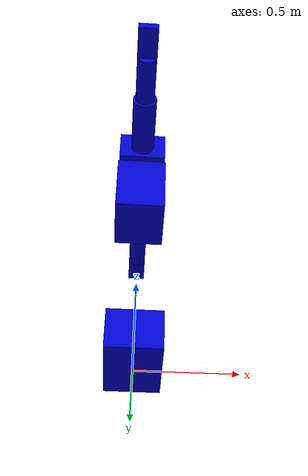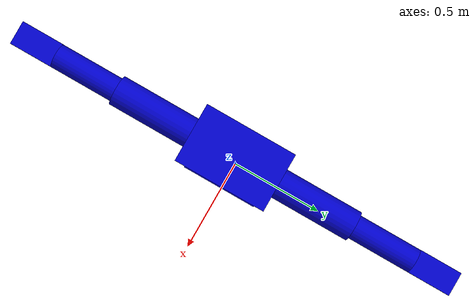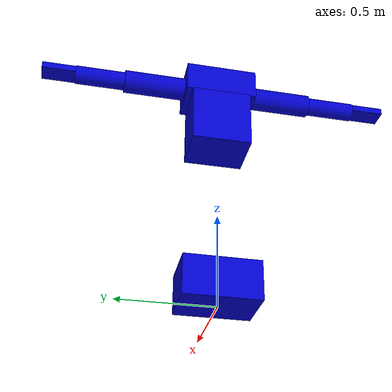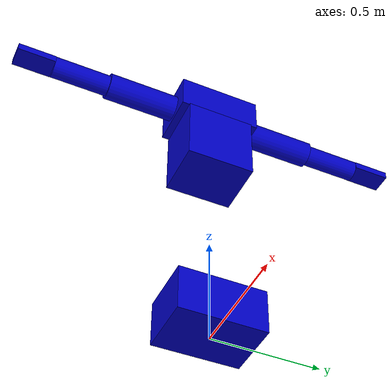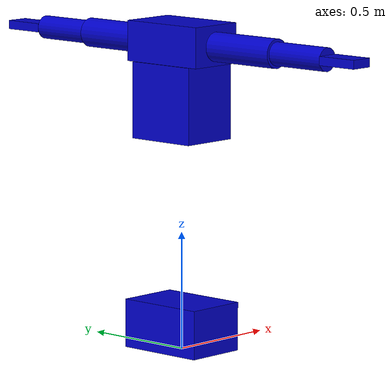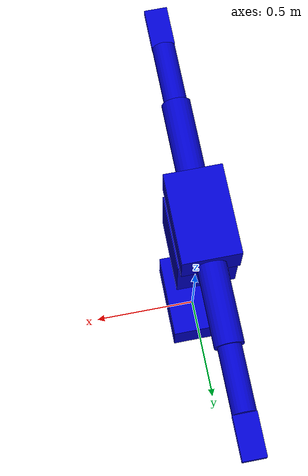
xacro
<?xml version="1.0"?>
  	<robot  name="dhm" xmlns:xacro="http://www.ros.org/wiki/xacro">

	<!-- These values must be entered manually -->
	<!-- Average BMI = 22. If above, enter 1, else enter 0 -->
	<xacro:property name="bodyHeight" value="1.80" />
	<xacro:property name="bodyMass" value="110" />
	<xacro:property name="BMI" value="${bodyMass/(bodyHeight*bodyHeight)}" />
	<xacro:property name="isBMIgreaterThanAverage" value="0"/>
	<!-- From now on, nothing should be changed in the file -->

	<xacro:property name="PI" value="3.1415926535897931"/>

	<!-- Joint maximal velocity (guessed) -->
	<xacro:property name="maxVelJoint" value="3.0" />

	<!-- Scaling factor for joint maximal torque capacity (real capacity = factor * average human capacity)-->
	<xacro:property name="forceCapacity" value="1.0" />

	<!-- Joint dynamic properties -->
	<xacro:property name="jointDamping" value="0.1" />
	<xacro:property name="jointFriction" value="0.1" />

	<!-- Define length of body segments from total body bodyHeight -->

    <xacro:property name="ankleHeight" value="${bodyHeight*0.04}" />
	<xacro:property name="kneeHeight" value="${bodyHeight*0.28}" />
	<xacro:property name="hipHeight" value="${bodyHeight*0.53}" />
	<xacro:property name="shoulderHeight" value="${bodyHeight*0.82}" />
	<xacro:property name="hipWidth" value="${bodyHeight*0.105}" />
	<xacro:property name="armSpan" value="${bodyHeight*1.09}" />
	<xacro:property name="handLength" value="${bodyHeight*0.1}" />
	<xacro:property name="footLength" value="${bodyHeight*0.152}" />

	<xacro:property name="S5_L5_x" value="-0.000836" />
	<xacro:property name="S5_hip_x" value="0" />

	<xacro:property name="L5_T8_x" value="${ 0.0}" />
	<xacro:property name="T8_CSJ_y" value="0" />

    <xacro:property name="S5_L5" value="${0.06*bodyHeight}" />
	<xacro:property name="L5_T8" value="${0.18*bodyHeight}" />
	<xacro:property name="T8_C7" value="${0.095*bodyHeight}" />
	<xacro:property name="CSJ_C7" value="${0.05*bodyHeight}" />
	<xacro:property name="T8_CSJ" value="${T8_C7 - CSJ_C7}" />
	<xacro:property name="C7_C1" value="${0.055*bodyHeight}" />
	<xacro:property name="C1_headtop" value="${0.08*bodyHeight}" />
	<xacro:property name="headbase_headtop" value="${1.1*C1_headtop}" />

    <xacro:property name="shoulder_elbow" value="${bodyHeight*0.19}" />
	<xacro:property name="elbow_wrist" value="${bodyHeight*0.15}" />
	<xacro:property name="CSJ_shoulder" value="${0.5*armSpan - shoulder_elbow - elbow_wrist - handLength}" />

	<xacro:property name="S5_hip_horizontal" value="${0.5*hipWidth}" />

	<!-- Define thickness of body segment from BMI -->
	<xacro:property name="slimBMI" value="17" />
	<xacro:property name="normBMI" value="22" />
	<xacro:property name="fatBMI" value="40" />
	<xacro:property name="slimAlpha" value="0.9" />
	<xacro:property name="normAlpha" value="1.0" />
	<xacro:property name="fatAlpha" value="1.3" />

	<xacro:if value="${isBMIgreaterThanAverage == 1}">
		<xacro:property name="alpha" value="${1 + (fatAlpha  - normAlpha) * (BMI - normBMI) / (fatBMI - normBMI)}" />-->
	</xacro:if>
	<xacro:if value="${isBMIgreaterThanAverage == 0}">
		<xacro:property name="alpha" value="${1 - (normAlpha - slimAlpha) * (normBMI - BMI) / (normBMI - slimBMI)}" />-->
	</xacro:if>

	<!-- Define body segments shapes -->
	<!-- For collision shapes, pelvis, lumbarspine, and thoracicspine is scaled by a factor collision_XXX_factor to enable arms along body without collision issues with the torso -->
	<xacro:property name="collision_width_factor" value="0.7"/>
  <xacro:property name="collision_height_factor" value="0.7"/>
  <xacro:property name="collision_depth_factor" value="0.7"/>

	<xacro:property name="hip_thickness" value="${alpha*0.08}" />

	<xacro:property name="pelvis_length" value="${S5_L5 + hip_thickness}" />
	<xacro:property name="pelvis_width" value="${hipWidth + 0.7*hip_thickness + alpha*0.11}" />
	<xacro:property name="pelvis_depth" value="${2*alpha*0.11}" />

	<xacro:property name="lumbarspine_length" value="${L5_T8}" />
	<xacro:property name="lumbarspine_width" value="${hipWidth+alpha*0.105}" />
	<xacro:property name="lumbarspine_depth" value="${2*alpha*0.105}" />

	<xacro:property name="thoracicspine_length" value="${T8_C7}" />
	<xacro:property name="thoracicspine_width" value="${2*0.7*CSJ_shoulder+alpha*0.10}" />
	<xacro:property name="thoracicspine_depth" value="${2*alpha*0.10}" />

	<xacro:property name="neck_length" value="${C7_C1}" />
	<xacro:property name="neck_radius" value="${alpha*0.045}" />

	<xacro:property name="head_length" value="${headbase_headtop}" />
	<xacro:property name="head_radius" value="${0.1}" />

	<xacro:property name="clavicular_length" value="${CSJ_shoulder}" />
	<xacro:property name="clavicular_radius" value="${alpha*0.06}" />

	<xacro:property name="arm_length" value="${shoulder_elbow}" />
	<xacro:property name="arm_radius" value="${alpha*0.05}" />

	<xacro:property name="forearm_length" value="${elbow_wrist}" />
	<xacro:property name="forearm_radius" value="${alpha*0.04}" />

	<xacro:property name="palm_length" value="${0.5*handLength}" />
	<xacro:property name="palm_width" value="${2*alpha*0.04}" />
	<xacro:property name="palm_depth" value="${2*alpha*0.015}" />

	<xacro:property name="fingers_length" value="${0.5*handLength}" />
	<xacro:property name="fingers_width" value="${palm_width}" />
	<xacro:property name="fingers_depth" value="${palm_depth}" />

	<xacro:property name="hand_length" value="${handLength}" />
	<xacro:property name="hand_width" value="${2*alpha*0.04}" />
	<xacro:property name="hand_depth" value="${2*alpha*0.015}" />

	<!-- Define mass normalization value and segment masses -->
	<xacro:property name="massNorm" value="${-0.0426 + 1.00096*bodyMass + 0.00058*bodyHeight*100}" />

	<xacro:property name="lowertorso_mass" value="${bodyMass * (-7.498 + 0.0976*bodyMass + 0.04896*bodyHeight*100) / massNorm}" />
	<xacro:property name="middletorso_mass" value="${bodyMass * (7.181 + 0.2234*bodyMass - 0.0663*bodyHeight*100) / massNorm}" />
	<xacro:property name="uppertorso_mass" value="${bodyMass * (8.2144 + 0.1862*bodyMass - 0.0584*bodyHeight*100) / massNorm}" />
	<xacro:property name="pelvis_mass" value="${lowertorso_mass}" />
	<xacro:property name="lumbarspine_mass" value="${middletorso_mass}" />
	<xacro:property name="thoracicspine_mass" value="${(1.0-0.1)*uppertorso_mass}" />
	<xacro:property name="neckandhead_mass" value="${bodyMass * (1.296 + 0.0171*bodyMass + 0.0143*bodyHeight*100) / massNorm}" />
	<xacro:property name="neck_mass" value="${0.1*neckandhead_mass}" />
	<xacro:property name="head_mass" value="${0.9*neckandhead_mass}" />
	<xacro:property name="clavicular_mass" value="${0.05*uppertorso_mass}" />
	<xacro:property name="arm_mass" value="${bodyMass * (0.25 + 0.03012*bodyMass - 0.0027*bodyHeight*100) / massNorm}" />
	<xacro:property name="forearm_mass" value="${bodyMass * (0.3185 + 0.01445*bodyMass - 0.00114*bodyHeight*100) / massNorm}" />
	<xacro:property name="hand_mass" value="${bodyMass * (-0.1165 + 0.0036*bodyMass + 0.00175*bodyHeight*100) / massNorm}" />
	<xacro:property name="palm_mass" value="${0.7*hand_mass}" />
	<xacro:property name="fingers_mass" value="${0.3*hand_mass}" />
	<xacro:property name="thigh_mass" value="${bodyMass * (-2.649 + 0.1463*bodyMass + 0.0137*bodyHeight*100) / massNorm}" />
	<xacro:property name="shank_mass" value="${bodyMass * (-1.592 + 0.03616*bodyMass + 0.0121*bodyHeight*100) / massNorm}" />
	<xacro:property name="foot_mass" value="${bodyMass * (-0.829 + 0.0077*bodyMass + 0.0073*bodyHeight*100) / massNorm}" />

	<!-- Macro which computes a shape (box or cylinder) inertia -->
	<!-- The lengths Lx, Ly and Lz are in the segment inertial frame (and not in the segment base frame, i.e. joint frame) -->
	<!-- For the cylinder, the cylinder axis is along Z -->
	<xacro:macro name="box_inertia" params="m Lx Ly Lz">
		<inertia ixx="${1/12 * m * (Ly*Ly + Lz*Lz)}" ixy="0" ixz="0" iyy="${1/12 * m * (Lx*Lx + Lz*Lz)}" iyz="0" izz="${1/12 * m * (Lx*Lx + Ly*Ly)}" />
	</xacro:macro>
	<xacro:macro name="cylinder_inertia" params="m L r">
		<inertia ixx="${1/12 * m * (3*r*r + L*L)}" ixy="0" ixz="0" iyy="${1/12 * m * (3*r*r + L*L)}" iyz="0" izz="${1/2 * m * r*r}" />
	</xacro:macro>
	<xacro:macro name="sphere_inertia" params="m r">
		<inertia ixx="${2/5 * m * r*r}" ixy="0" ixz="0" iyy="${2/5 * m * r*r}" iyz="0" izz="${2/5 * m * r*r}" />
	</xacro:macro>

	<xacro:property name="virtual_radius" value="0.01" />
	<xacro:macro name="virtual_body" params="name m">
		<link name="${name}">
			<inertial>
				<mass value="${m}" />
				<origin xyz="0 0 0" rpy="0 0 0" />
				<xacro:sphere_inertia m="${m}" r="${virtual_radius}"/>
			</inertial>
		</link>
	</xacro:macro>

	<!-- Materials -->
	<material name="blue">
		<color rgba="0 0 0.8 1"/>
	</material>

	<!-- Define bodies -->

	<link name="pelvis">
		<visual>
			<geometry>
				<box size="${pelvis_depth} ${pelvis_width} ${pelvis_length}"/>
			</geometry>
			<origin rpy="0 0 0" xyz="0 0 ${pelvis_length/2}"/>
			<material name="blue" />
		</visual>
		<collision>
			<geometry>
				<box size="${collision_depth_factor*pelvis_depth} ${collision_width_factor*pelvis_width} ${collision_height_factor*pelvis_length}"/>
			</geometry>
			<origin rpy="0 0 0" xyz="0 0 ${pelvis_length/2}"/>
		</collision>
		<inertial>
			<mass value="${0.7*pelvis_mass}" />
			<origin rpy="0 0 0" xyz="0 0 ${pelvis_length/2}"/>
			<xacro:box_inertia m="${0.7*pelvis_mass}" Lx="${pelvis_depth}" Ly="${pelvis_width}" Lz="${pelvis_length}"/>
		</inertial>
	</link>

	<xacro:virtual_body name="body_L5_1" m="${0.1*pelvis_mass}"/>
	<xacro:virtual_body name="body_L5_2" m="${0.1*lumbarspine_mass}"/>

	<link name="lumbar_spine">
		<visual>
			<geometry>
				<box size="${lumbarspine_depth}  ${lumbarspine_width} ${lumbarspine_length}"/>
			</geometry>
 			<origin rpy="0 0 0" xyz="0 0 ${lumbarspine_length/2}"/>
			<material name="blue" />
		</visual>
		<collision>
			<geometry>
				<box size="${collision_depth_factor*lumbarspine_depth}  ${collision_width_factor*lumbarspine_width} ${collision_height_factor*lumbarspine_length}"/>
			</geometry>
			<origin rpy="0 0 0" xyz="0 0 ${lumbarspine_length/2}"/>
		</collision>
		<inertial>
			<mass value="${0.8*lumbarspine_mass}" />
			<origin rpy="0 0 0" xyz="0 0 ${lumbarspine_length/2}"/>
			<xacro:box_inertia m="${0.8*lumbarspine_mass}" Lx="${lumbarspine_depth}" Ly="${lumbarspine_width}" Lz="${lumbarspine_length}"/>
		</inertial>
	</link>

	<xacro:virtual_body name="body_T8_1" m="${0.1*lumbarspine_mass}"/>
	<xacro:virtual_body name="body_T8_2" m="${0.1*thoracicspine_mass}"/>

	<link name="thoracic_spine">
		<visual>
			<geometry>
				<box size="${thoracicspine_depth} ${thoracicspine_width} ${thoracicspine_length}"/>
			</geometry>
			<origin rpy="0 0 0" xyz="0 0 ${thoracicspine_length/2}"/>
			<material name="blue" />
		</visual>
		<collision>
			<geometry>
				<box size="${collision_depth_factor*thoracicspine_depth} ${collision_width_factor*thoracicspine_width} ${collision_height_factor*thoracicspine_length}"/>
			</geometry>
			<origin rpy="0 0 0" xyz="0 0 ${thoracicspine_length/2}"/>
		</collision>
		<inertial>
			<mass value="${0.65*thoracicspine_mass}" />
			<origin rpy="0 0 0" xyz="0 0 ${thoracicspine_length/2}" />
			<xacro:box_inertia m="${0.65*thoracicspine_mass}" Lx="${thoracicspine_depth}" Ly="${thoracicspine_width}" Lz="${thoracicspine_length}"/>
		</inertial>
	</link>

	<xacro:virtual_body name="body_T4_right_clavicular" m="${0.1*thoracicspine_mass}"/>

	<link name="right_clavicular">
		<visual>
			<geometry>
				<cylinder length="${clavicular_length}" radius="${clavicular_radius}"/>
			</geometry>
			<origin  rpy="0 0 0" xyz="0 0 ${CSJ_shoulder/2}"/>
			<material name="blue" />
		</visual>
		<inertial>
			<mass value="${0.9*clavicular_mass}" />
			<origin  rpy="0 0 0" xyz="0 0 ${CSJ_shoulder/2}"/>
			<xacro:cylinder_inertia m="${0.9*clavicular_mass}" L="${clavicular_length}" r="${clavicular_radius}" />
		</inertial>
	</link>

	<xacro:virtual_body name="body_right_shoulder_1" m="${0.1*clavicular_mass}"/>
	<xacro:virtual_body name="body_right_shoulder_2" m="${0.1*arm_mass}"/>

	<link name="right_arm">
		<visual>
			<geometry>
				<cylinder length="${arm_length}" radius="${arm_radius}"/>
			</geometry>
			<origin rpy="0 0 0" xyz="0 0 ${arm_length/2}"/>
			<material name="blue" />
		</visual>
		<collision>
			<geometry>
				<cylinder length="${arm_length}" radius="${arm_radius}"/>
			</geometry>
			<origin rpy="0 0 0" xyz="0 0 ${arm_length/2}"/>
		</collision>
		<inertial>
			<mass value="${0.8*arm_mass}" />
			<origin rpy="0 0 0" xyz="0 0 ${arm_length/2}"/>
			<xacro:cylinder_inertia m="${0.8*arm_mass}" L="${arm_length}" r="${arm_radius}" />
		</inertial>
	</link>

	<xacro:virtual_body name="body_right_elbow" m="${0.1*arm_mass}"/>

	<link name="right_forearm">
		<visual>
			<geometry>
				<cylinder length="${forearm_length}" radius="${forearm_radius}"/>
			</geometry>
			<origin rpy="0 0 0" xyz="0 0 ${forearm_length/2}"/>
			<material name="blue" />
		</visual>
		<collision>
			<geometry>
				<cylinder length="${forearm_length}" radius="${forearm_radius}"/>
			</geometry>
			<origin rpy="0 0 0" xyz="0 0 ${forearm_length/2}"/>
		</collision>
		<inertial>
			<mass value="${0.9*forearm_mass}" />
			<origin rpy="0 0 0" xyz="0 0 ${forearm_length/2}"/>
			<xacro:cylinder_inertia m="${0.9*forearm_mass}" L="${forearm_length}" r="${forearm_radius}" />
		</inertial>
	</link>

	<xacro:virtual_body name="body_right_wrist" m="${0.1*forearm_mass}"/>

	<link name="right_hand">
		<visual>
			<geometry>
				<box size="${hand_width} ${hand_depth} ${hand_length}"/>
			</geometry>
			<origin rpy="0 0 0" xyz="0 0 ${hand_length/2}"/>
			<material name="blue" />
		</visual>
		<collision>
			<geometry>
				<box size="${hand_width} ${hand_depth} ${hand_length} "/>
			</geometry>
			<origin rpy="0 0 0" xyz="0 0 ${hand_length/2}"/>
		</collision>
		<inertial>
			<mass value="${hand_mass}" />
			<origin rpy="0 0 0" xyz="0 0 ${hand_length/2}" />
			<xacro:box_inertia m="${hand_mass}" Lx="${hand_width}" Ly="${hand_depth}" Lz="${hand_length}"/>
		</inertial>
	</link>

<xacro:virtual_body name="body_T4_left_clavicular" m="${0.1*thoracicspine_mass}"/>

<link name="left_clavicular">
		<visual>
			<geometry>
				<cylinder length="${clavicular_length}" radius="${clavicular_radius}"/>
			</geometry>
			<origin  rpy="0 0 0" xyz="0 0 ${CSJ_shoulder/2}"/>
			<material name="blue" />
		</visual>
		<inertial>

			<mass value="${0.9*clavicular_mass}" />
			<origin  rpy="0 0 0" xyz="0 0 ${CSJ_shoulder/2}"/>
			<xacro:cylinder_inertia m="${0.9*clavicular_mass}" L="${clavicular_length}" r="${clavicular_radius}" />
		</inertial>
	</link>

<xacro:virtual_body name="body_left_shoulder_1" m="${0.1*clavicular_mass}"/>
<xacro:virtual_body name="body_left_shoulder_2" m="${0.1*arm_mass}"/>

 <link name="left_arm">
		<visual>
			<geometry>
				<cylinder length="${arm_length}" radius="${arm_radius}"/>
			</geometry>
			<origin rpy="0 0 0" xyz="0 0 ${arm_length/2}"/>
			<material name="blue" />
		</visual>
		<collision>
			<geometry>
				<cylinder length="${arm_length}" radius="${arm_radius}"/>
			</geometry>
			<origin rpy="0 0 0" xyz="0 0 ${arm_length/2}"/>
		</collision>
		<inertial>
			<mass value="${0.8*arm_mass}" />
			<origin rpy="0 0 0" xyz="0 0 ${arm_length/2}"/>>
			<xacro:cylinder_inertia m="${0.8*arm_mass}" L="${arm_length}" r="${arm_radius}" />
		</inertial>
	</link>

	<xacro:virtual_body name="body_left_elbow" m="${0.1*arm_mass}"/>

	<link name="left_forearm">
		<visual>
			<geometry>
				<cylinder length="${forearm_length}" radius="${forearm_radius}"/>
			</geometry>
			<origin rpy="0 0 0" xyz="0 0 ${forearm_length/2}"/>
			<material name="blue" />
		</visual>
		<collision>
			<geometry>
				<cylinder length="${forearm_length}" radius="${forearm_radius}"/>
			</geometry>
			<origin rpy="0 0 0" xyz="0 0 ${forearm_length/2}"/>
		</collision>
		<inertial>
			<mass value="${0.9*forearm_mass}" />
			<origin rpy="0 0 0" xyz="0 0 ${forearm_length/2}"/>
			<xacro:cylinder_inertia m="${0.9*forearm_mass}" L="${forearm_length}" r="${forearm_radius}" />
		</inertial>
	</link>

	<xacro:virtual_body name="body_left_wrist" m="${0.1*forearm_mass}"/>

	<link name="left_hand">
		<visual>
			<geometry>
				<box size="${hand_width} ${hand_depth} ${hand_length}"/>
			</geometry>
			<origin rpy="0 0 0" xyz="0 0 ${hand_length/2}"/>
			<material name="blue" />
		</visual>
		<collision>
			<geometry>
				<box size="${hand_width} ${hand_depth} ${hand_length}"/>
			</geometry>
			<origin rpy="0 0 0" xyz="0 0 ${hand_length/2}"/>
		</collision>
		<inertial>
			<mass value="${hand_mass}" />
			<origin rpy="0 0 0" xyz="0 0 ${hand_length/2}" />
			<xacro:box_inertia m="${hand_mass}" Lx="${hand_width}" Ly="${hand_depth}" Lz="${hand_length}"/>
		</inertial>
	</link>

	<!-- Define joints -->

	<!-- Back joints -->
	<joint name="lumbarspine_X" type="fixed">
		<parent link="pelvis"/>
		<child link="body_L5_1"/>
		<axis xyz="1 0 0"/>
		<origin xyz="0 0 ${bodyHeight/2}"/>
		<limit effort="${155*forceCapacity}" lower="-0.175" upper="0.175" velocity="${maxVelJoint}"/>
		<dynamics damping="${jointDamping}" friction="${jointFriction}"/>
	</joint>

	<joint name="lumbarspine_Y" type="fixed">
		<parent link="body_L5_1"/>
		<child link="body_L5_2"/>
		<axis xyz="0 1 0"/>
		<origin xyz="0 0 0"/>
		<limit effort="${228*forceCapacity}" lower="-0.175" upper="1.57" velocity="${maxVelJoint}"/>
		<dynamics damping="${jointDamping}" friction="${jointFriction}"/>
	</joint>

	<joint name="lumbarspine_Z" type="fixed">
		<parent link="body_L5_2"/>
		<child link="lumbar_spine"/>
		<axis xyz="0 0 1"/>
		<origin xyz="0 0 0"/>
		<limit effort="${65*forceCapacity}" lower="-0.262" upper="0.262" velocity="${maxVelJoint}"/>
		<dynamics damping="${jointDamping}" friction="${jointFriction}"/>
	</joint>

	<joint name="thoracicspine_X" type="fixed">
		<parent link="lumbar_spine"/>
		<child link="body_T8_1"/>
		<axis xyz="1 0 0"/>
		<origin xyz="${L5_T8_x} 0 ${L5_T8}"/>
		<limit effort="${155*forceCapacity}" lower="-0.175" upper="0.175" velocity="${maxVelJoint}"/>
		<dynamics damping="${jointDamping}" friction="${jointFriction}"/>
	</joint>

	<joint name="thoracicspine_Y" type="fixed">
		<parent link="body_T8_1"/>
		<child link="body_T8_2"/>
		<axis xyz="0 1 0"/>
		<origin xyz="0 0 0"/>
		<limit effort="${228*forceCapacity}" lower="-0.175" upper="0.175" velocity="${maxVelJoint}"/>
		<dynamics damping="${jointDamping}" friction="${jointFriction}"/>
	</joint>

	<joint name="thoracicspine_Z" type="fixed">
		<parent link="body_T8_2"/>
		<child link="thoracic_spine"/>
		<axis xyz="0 0 1"/>
		<origin xyz="0 0 0"/>
		<limit effort="${65*forceCapacity}" lower="-0.262" upper="0.262" velocity="${maxVelJoint}"/>
		<dynamics damping="${jointDamping}" friction="${jointFriction}"/>
	</joint>

	<!-- Right arm joints -->
	<joint name="right_clavicular_X" type="fixed">
    <!-- flexion (elevation) -->
		<parent link="thoracic_spine"/>
		<child link="body_T4_right_clavicular"/>
		<axis xyz="1 0 0"/>
		<origin xyz="0 ${-T8_CSJ_y} ${T8_CSJ}" rpy="${PI/2} 0 0"/>
		<limit effort="${105*forceCapacity}" lower="${-0.15}" upper="${0.15}" velocity="${maxVelJoint}"/>
		<dynamics damping="${jointDamping}" friction="${jointFriction}"/>
	</joint>

	<joint name="right_clavicular_Y" type="fixed">
    <!-- abduction -->
		<parent link="body_T4_right_clavicular"/>
		<child link="right_clavicular"/>
		<axis xyz="0 1 0"/>
		<origin xyz="0 0 0"/>
		<limit effort="${107*forceCapacity}" lower="${-0.5}" upper="${0.5}" velocity="${maxVelJoint}"/>
		<dynamics damping="${jointDamping}" friction="${jointFriction}"/>
	</joint>

	<joint name="right_shoulder_X" type="revolute">
    <!-- abduction -->
		<parent link="right_clavicular"/>
		<child link="body_right_shoulder_1"/>
		<axis xyz="1 0 0"/>
		<origin xyz="0 0 ${CSJ_shoulder}"/>
		<limit effort="${69*forceCapacity}" lower="0" upper="${PI}" velocity="${maxVelJoint}"/>
		<dynamics damping="${jointDamping}" friction="${jointFriction}"/>
	</joint>

	<joint name="right_shoulder_Y" type="revolute">
    <!-- flexion -->
		<parent link="body_right_shoulder_1"/>
		<child link="body_right_shoulder_2"/>
		<axis xyz="0 1 0"/>
		<origin xyz="0 0 0"/>
		<limit effort="${90*forceCapacity}" lower="${0}" upper="${PI/4}" velocity="${maxVelJoint}"/>
		<dynamics damping="${jointDamping}" friction="${jointFriction}"/>
	</joint>

	<joint name="right_shoulder_Z" type="revolute">
    <!-- rotation -->
		<parent link="body_right_shoulder_2"/>
		<child link="right_arm"/>
		<axis xyz="0 0 1"/>
		<origin xyz="0 0 0"/>
		<limit effort="${51*forceCapacity}" lower="0" upper="${PI/2}" velocity="${maxVelJoint}"/>
		<dynamics damping="${jointDamping}" friction="${jointFriction}"/>
	</joint>

	<joint name="right_elbow_Y" type="revolute">
    <!-- flexion -->
		<parent link="right_arm"/>
		<child link="body_right_elbow"/>
		<axis xyz="0 1 0"/>
		<origin xyz="0 0 ${shoulder_elbow}"/>
		<limit effort="${75*forceCapacity}" lower="0" upper="2.531" velocity="${maxVelJoint}"/>
		<dynamics damping="${jointDamping}" friction="${jointFriction}"/>
	</joint>

	<joint name="right_elbow_Z" type="fixed">
    <!-- pronosupination -->
		<parent link="body_right_elbow"/>
		<child link="right_forearm"/>
		<axis xyz="0 0 1"/>
		<origin xyz="0 0 0"/>
		<limit effort="${13*forceCapacity}" lower="${-PI/2}" upper="${PI/2}" velocity="${maxVelJoint}"/>
		<dynamics damping="${jointDamping}" friction="${jointFriction}"/>
	</joint>

	<joint name="right_wrist_X" type="fixed">
    <!-- flexion -->
		<parent link="right_forearm"/>
		<child link="body_right_wrist"/>
		<axis xyz="1 0 0"/>
		<origin xyz="0 0 ${elbow_wrist}"/>
		<limit effort="${10*forceCapacity}" lower="-1.0" upper="1.0" velocity="${maxVelJoint}"/>
		<dynamics damping="${jointDamping}" friction="${jointFriction}"/>
	</joint>

	<joint name="right_wrist_Y" type="fixed">
    <!-- abduction -->
		<parent link="body_right_wrist"/>
		<child link="right_hand"/>
		<axis xyz="0 1 0"/>
		<origin xyz="0 0 0"/>
		<limit effort="${11*forceCapacity}" lower="-0.6" upper="0.6" velocity="${maxVelJoint}"/>
		<dynamics damping="${jointDamping}" friction="${jointFriction}"/>
	</joint>

	<joint name="left_clavicular_X" type="fixed">
    <!-- flexion (elevation) -->
		<parent link="thoracic_spine"/>
		<child link="body_T4_left_clavicular"/>
		<axis xyz="1 0 0"/>
		<origin xyz="0 0 ${T8_CSJ}" rpy="${-PI/2} 0 0"/>
		<limit effort="${105*forceCapacity}" lower="${-0.15}" upper="${0.15}" velocity="${maxVelJoint}"/>
		<dynamics damping="${jointDamping}" friction="${jointFriction}"/>
	</joint>

	<joint name="left_clavicular_Y" type="fixed">
    <!-- abduction -->
		<parent link="body_T4_left_clavicular"/>
		<child link="left_clavicular"/>
		<axis xyz="0 1 0"/>
		<origin xyz="0 0 0"/>
		<limit effort="${107*forceCapacity}" lower="${-0.5}" upper="${0.5}" velocity="${maxVelJoint}"/>
		<dynamics damping="${jointDamping}" friction="${jointFriction}"/>
	</joint>

	<joint name="left_shoulder_X" type="fixed">
    <!-- abduction -->
		<parent link="left_clavicular"/>
		<child link="body_left_shoulder_1"/>
		<axis xyz="1 0 0"/>
		<origin xyz="0 0 ${CSJ_shoulder}"/>
		<limit effort="${69*forceCapacity}" lower="${-PI}" upper="1.571" velocity="${maxVelJoint}"/>
		<dynamics damping="${jointDamping}" friction="${jointFriction}"/>
	</joint>

	<joint name="left_shoulder_Y" type="fixed">
    <!-- flexion -->
		<parent link="body_left_shoulder_1"/>
		<child link="body_left_shoulder_2"/>
		<axis xyz="0 1 0"/>
		<origin xyz="0 0 0"/>
		<limit effort="${90*forceCapacity}" lower="${-PI/2}" upper="${2*PI/3}" velocity="${maxVelJoint}"/>
		<dynamics damping="${jointDamping}" friction="${jointFriction}"/>
	</joint>

	<joint name="left_shoulder_Z" type="fixed">
    <!-- rotation -->
		<parent link="body_left_shoulder_2"/>
		<child link="left_arm"/>
		<axis xyz="0 0 1"/>
		<origin xyz="0 0 0"/>
		<limit effort="${51*forceCapacity}" lower="-1.658" upper="1.396" velocity="${maxVelJoint}"/>
		<dynamics damping="${jointDamping}" friction="${jointFriction}"/>
	</joint>

	<joint name="left_elbow_Y" type="fixed">
    <!-- flexion -->
		<parent link="left_arm"/>
		<child link="body_left_elbow"/>
		<axis xyz="0 1 0"/>
		<origin xyz="0 0 ${shoulder_elbow}"/>
		<limit effort="${75*forceCapacity}" lower="0" upper="2.531" velocity="${maxVelJoint}"/>
		<dynamics damping="${jointDamping}" friction="${jointFriction}"/>
	</joint>

	<joint name="left_elbow_Z" type="fixed">
    <!-- pronosupination -->
		<parent link="body_left_elbow"/>
		<child link="left_forearm"/>
		<axis xyz="0 0 1"/>
		<origin xyz="0 0 0"/>
		<limit effort="${13*forceCapacity}" lower="${-PI/2}" upper="${PI/2}" velocity="${maxVelJoint}"/>
		<dynamics damping="${jointDamping}" friction="${jointFriction}"/>
	</joint>

	<joint name="left_wrist_X" type="fixed">
    <!-- flexion -->
		<parent link="left_forearm"/>
		<child link="body_left_wrist"/>
		<axis xyz="1 0 0"/>
		<origin xyz="0 0 ${elbow_wrist}"/>
		<limit effort="${10*forceCapacity}" lower="-1.0" upper="1.0" velocity="${maxVelJoint}"/>
		<dynamics damping="${jointDamping}" friction="${jointFriction}"/>
	</joint>

	<joint name="left_wrist_Y" type="fixed">
    <!-- abduction -->
		<parent link="body_left_wrist"/>
		<child link="left_hand"/>
		<axis xyz="0 1 0"/>
		<origin xyz="0 0 0"/>
		<limit effort="${11*forceCapacity}" lower="-0.6" upper="0.6" velocity="${maxVelJoint}"/>
		<dynamics damping="${jointDamping}" friction="${jointFriction}"/>
	</joint>

</robot>
